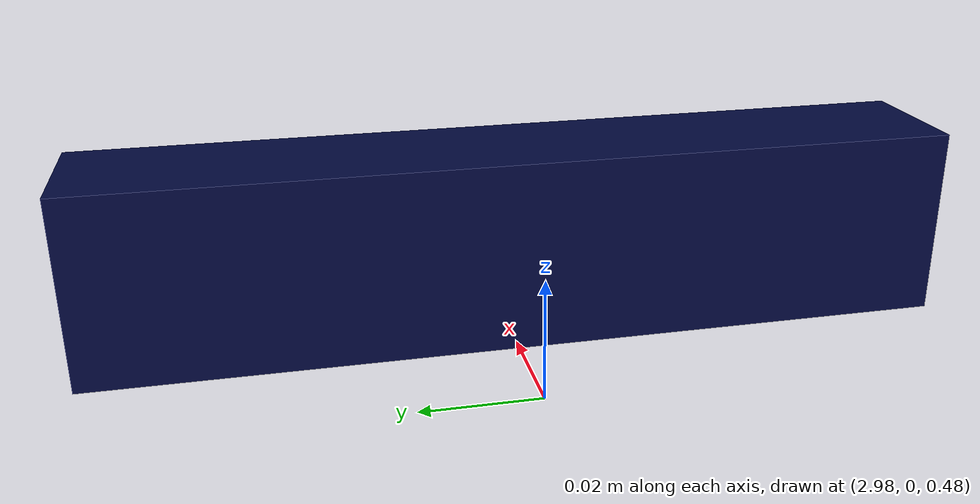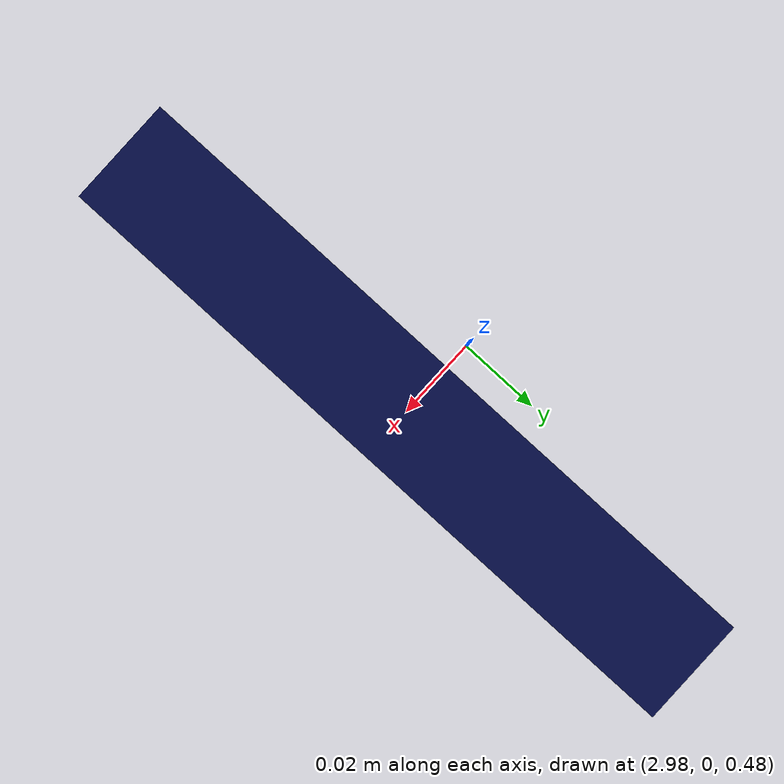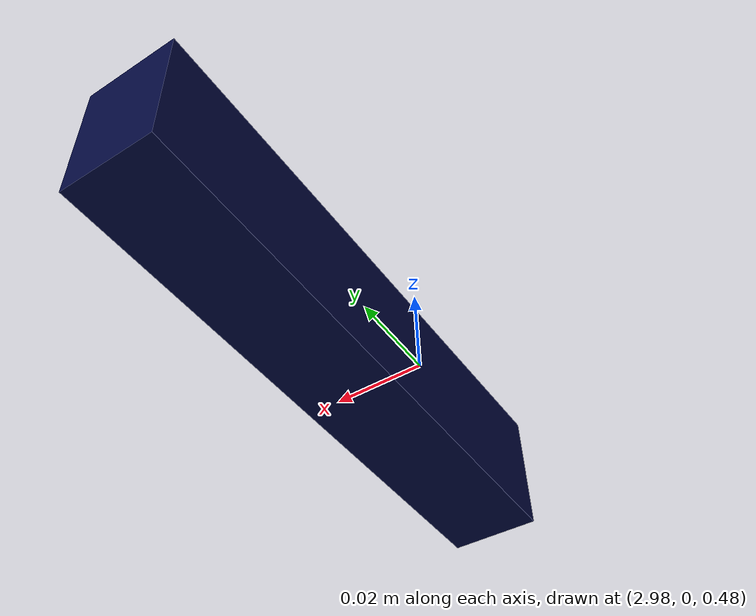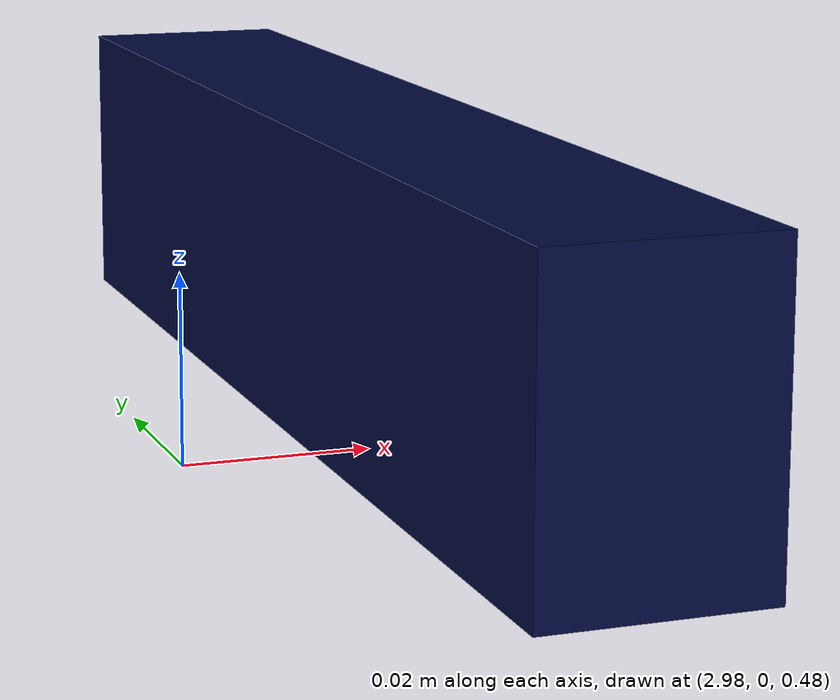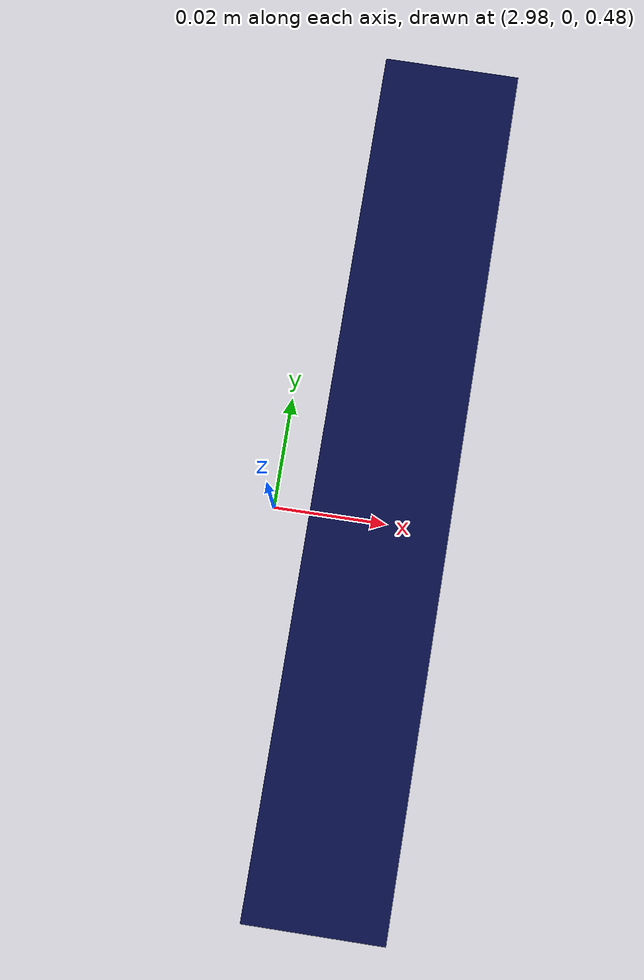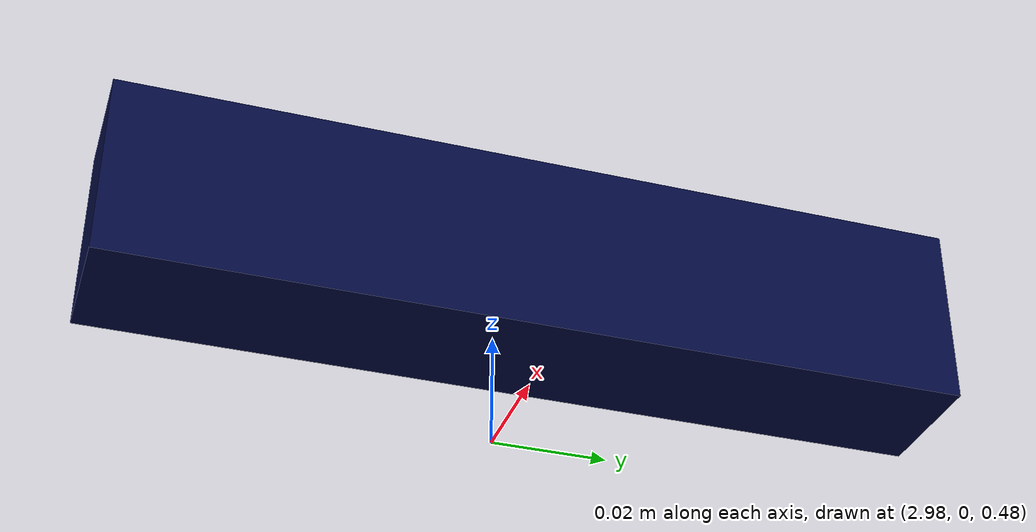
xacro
<?xml version="1.0" ?>
<robot name="rgbd_camera_world" xmlns:xacro="http://ros.org/wiki/xacro">

  <!-- parameters -->
  <xacro:arg name="namespace" default="rgbd"/>
  <xacro:arg name="x" default="3.0" />
  <xacro:arg name="y" default="0.0" />
  <xacro:arg name="z" default="0.5" />
  <xacro:arg name="roll" default="0.0" />
  <xacro:arg name="pitch" default="0.0" />
  <xacro:arg name="yaw" default="3.14159"/>

  <xacro:include filename="$(find sensor_moveit_perception)/urdf/rgbd_camera_macro.xacro" />

  <xacro:rgbd_camera_urdf
    parent="world"
    namespace="$(arg namespace)"
    camera_name="camera">
      <origin xyz="$(arg x) $(arg y) $(arg z)" rpy="$(arg roll) $(arg pitch) $(arg yaw)"/>
  </xacro:rgbd_camera_urdf>

  <link name="world"/>

</robot>

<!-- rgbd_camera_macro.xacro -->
<robot name="rgbd_camera" xmlns:xacro="http://ros.org/wiki/xacro">

  <xacro:include filename="$(find sensor_moveit_perception)/urdf/rgbd_camera.gazebo.xacro" />
  <xacro:include filename="$(find sensor_moveit_perception)/urdf/camera_common.xacro" />

  <xacro:macro name="rgbd_camera_urdf" params="parent *origin namespace:=rgbd camera_name:=camera">

    <joint name="${namespace}_${camera_name}_base_joint" type="fixed">
      <parent link="${parent}"/>
      <child link="${namespace}_${camera_name}_link"/>
      <xacro:insert_block name="origin" />
    </joint>

    <link name="${namespace}_${camera_name}_link">
      <inertial>
        <origin xyz="0 0 0" rpy="0 0 0"/>
        <mass value="0.42"/>
        <xacro:box_inertia x="0.022" y="0.141" z="0.031" m="0.42" />
      </inertial>
      <visual>
        <origin xyz="0 0 0" rpy="0 0 0"/>
        <geometry>
          <box size="0.022 0.141 0.031"/>
        </geometry>
        <material name="blue_black" />
      </visual>
      <collision>
        <origin xyz="0 0 0" rpy="0 0 0"/>
        <geometry>
          <box size="0.022 0.141 0.031"/>
        </geometry>
      </collision>
    </link>

    <joint name="${namespace}_${camera_name}_color_joint" type="fixed">
      <origin xyz="0 0 0" rpy="0 0 0"/>
      <parent link="${namespace}_${camera_name}_link"/>
      <child link="${namespace}_${camera_name}_color_frame"/>
    </joint>
    <link name="${namespace}_${camera_name}_color_frame"/>

    <joint name="${namespace}_${camera_name}_color_optical_joint" type="fixed">
      <origin xyz="0 0 0" rpy="-1.57 0 -1.57"/>
      <parent link="${namespace}_${camera_name}_color_frame"/>
      <child link="${namespace}_${camera_name}_color_optical_frame"/>
    </joint>
    <link name="${namespace}_${camera_name}_color_optical_frame"/>

    <joint name="${namespace}_${camera_name}_depth_joint" type="fixed">
      <origin xyz="0 0 0" rpy="0 0 0"/>
      <parent link="${namespace}_${camera_name}_link"/>
      <child link="${namespace}_${camera_name}_depth_frame"/>
    </joint>
    <link name="${namespace}_${camera_name}_depth_frame"/>

    <joint name="${namespace}_${camera_name}_depth_optical_joint" type="fixed">
      <origin xyz="0 0 0" rpy="-1.57 0 -1.57"/>
      <parent link="${namespace}_${camera_name}_depth_frame"/>
      <child link="${namespace}_${camera_name}_depth_optical_frame"/>
    </joint>
    <link name="${namespace}_${camera_name}_depth_optical_frame"/>

    <xacro:rgbd_camera_gazebo
      namespace="${namespace}"
      camera_name="${camera_name}"
      camera_link="${namespace}_${camera_name}_link"
      camera_depth_frame="${namespace}_${camera_name}_depth_frame"
      camera_depth_optical_frame="${namespace}_${camera_name}_depth_optical_frame"
    />

  </xacro:macro>

</robot>

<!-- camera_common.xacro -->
<robot name="camera_common" xmlns:xacro="http://ros.org/wiki/xacro">

    <!-- Inertia -->
  <xacro:macro name="box_inertia" params="x y z m">
    <inertia  ixx="${m/12*(y*y+z*z)}"
              iyy="${m/12*(x*x+z*z)}"
              izz="${m/12*(x*x+y*y)}"
              ixy = "0" iyz = "0" ixz = "0" />
  </xacro:macro>

  <!-- Color -->
  <material name="blue_black">
    <color rgba="0.009 0.035 0.25 1.0"/>
  </material>

</robot>
